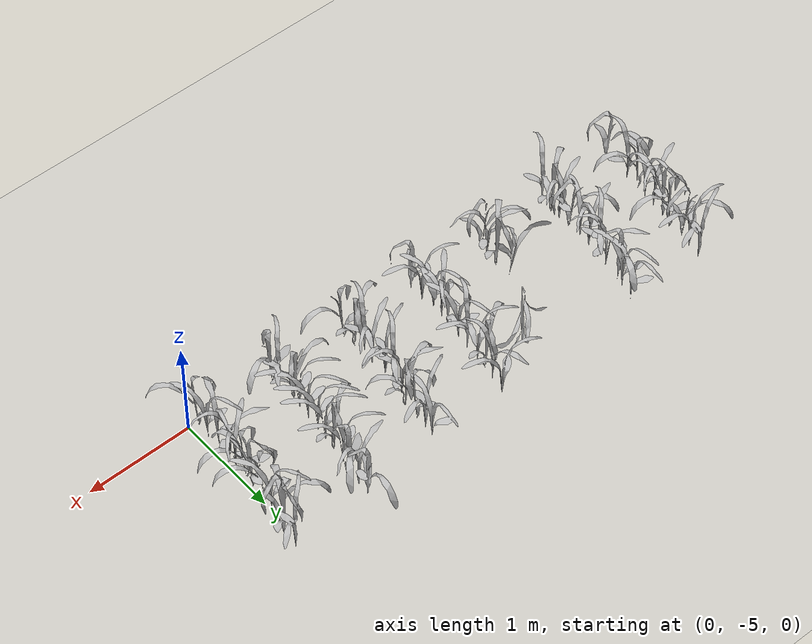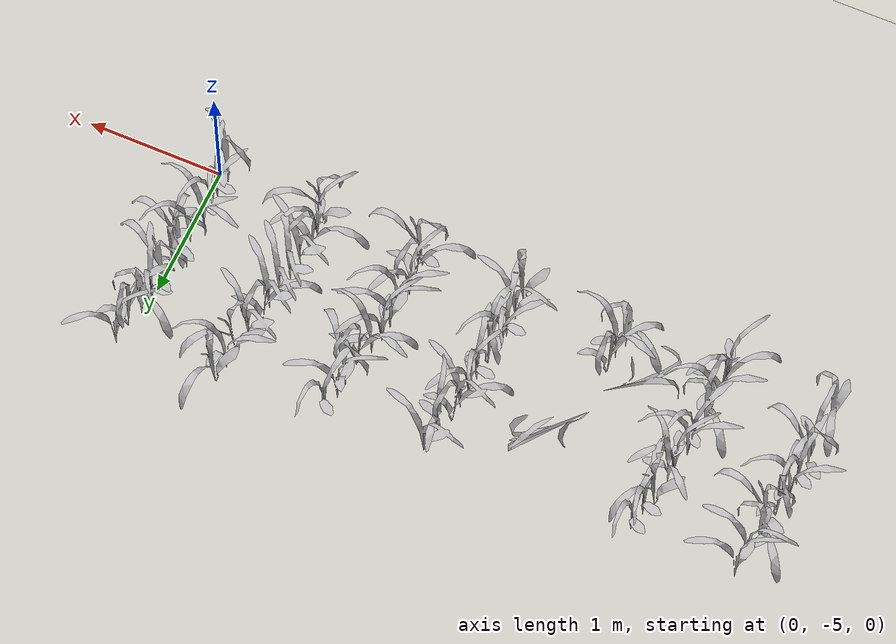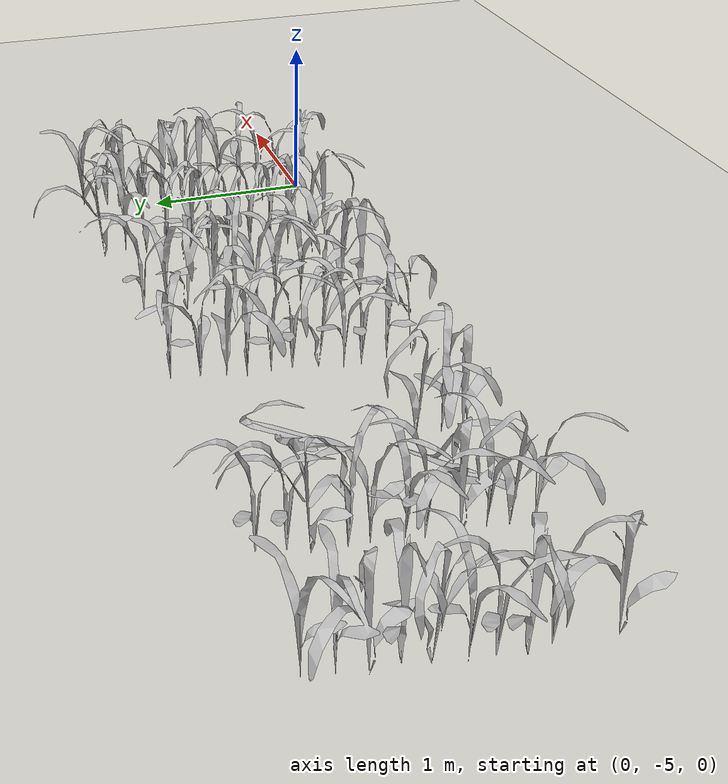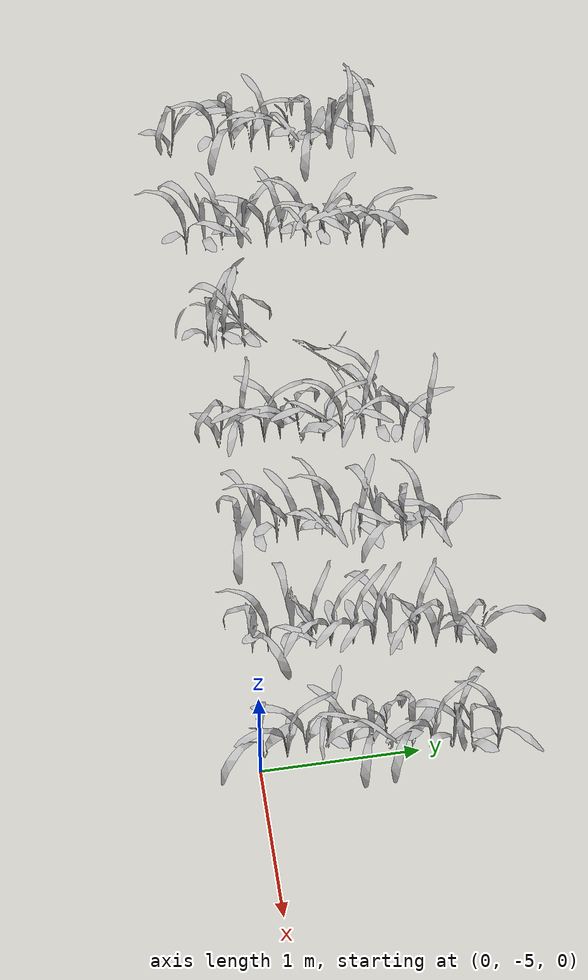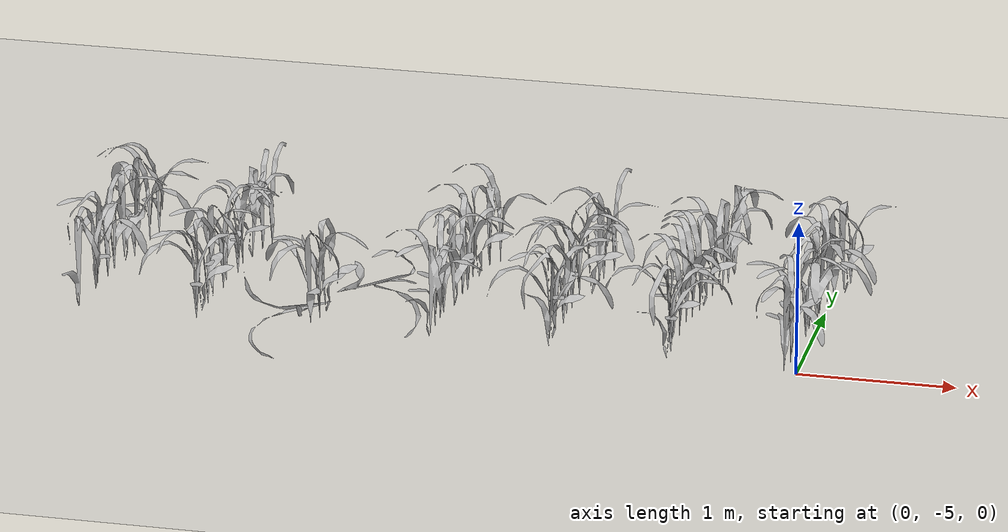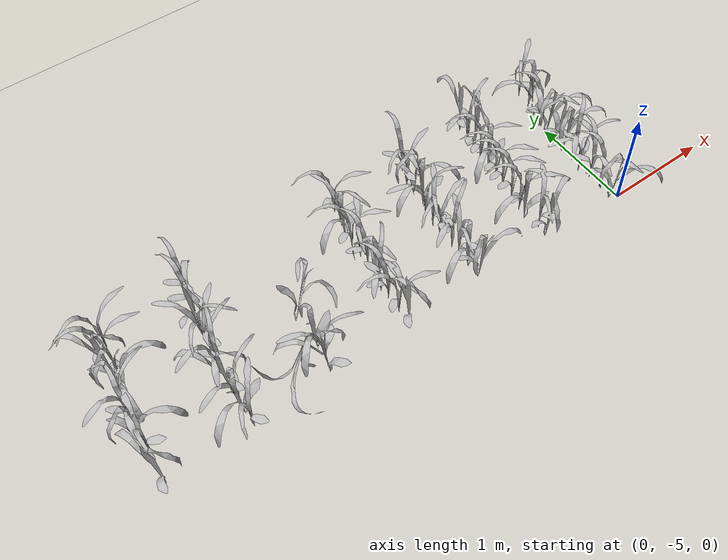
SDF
<sdf version="1.7">
 <world name="default">
  <model name="maize_01_0000">
   <pose>-4.60021 -4.94897 1e-06 3e-06 0.000156 2.6317</pose>
   <link name="maize_01_link">
    <inertial>
     <pose>0 0 0.01 0 -0 0</pose>
     <mass>0.3</mass>
     <inertia>
      <ixx>0.00334167</ixx>
      <ixy>0</ixy>
      <ixz>0</ixz>
      <iyy>0.00334167</iyy>
      <iyz>0</iyz>
      <izz>1.66667e-05</izz>
     </inertia>
     <pose>0 0 0.1 0 -0 0</pose>
    </inertial>
    <visual name="visual">
     <geometry>
      <mesh><uri>model://maize_01/meshes/maize_01.dae</uri><scale>0.683166 0.683166 0.683166</scale></mesh>
     </geometry>
    </visual>
   </link>
   <static>0</static>
  </model>
  <model name="maize_02_0001">
   <pose>-4.57675 -4.65483 -0 2.8e-05 5e-06 -2.64534</pose>
   <link name="maize_02_link">
    <inertial>
     <pose>0 0 0.01 0 -0 0</pose>
     <mass>0.3</mass>
     <inertia>
      <ixx>0.00334167</ixx>
      <ixy>0</ixy>
      <ixz>0</ixz>
      <iyy>0.00334167</iyy>
      <iyz>0</iyz>
      <izz>1.66667e-05</izz>
     </inertia>
     <pose>0 0 0.1 0 -0 0</pose>
    </inertial>
    <visual name="visual">
     <geometry>
      <mesh><uri>model://maize_02/meshes/maize_02.dae</uri><scale>0.683166 0.683166 0.683166</scale></mesh>
     </geometry>
    </visual>
   </link>
   <static>0</static>
  </model>
  <model name="maize_01_0002">
   <pose>-4.60094 -4.53894 -0 5e-06 2.8e-05 0.324141</pose>
   <link name="maize_01_link">
    <inertial>
     <pose>0 0 0.01 0 -0 0</pose>
     <mass>0.3</mass>
     <inertia>
      <ixx>0.00334167</ixx>
      <ixy>0</ixy>
      <ixz>0</ixz>
      <iyy>0.00334167</iyy>
      <iyz>0</iyz>
      <izz>1.66667e-05</izz>
     </inertia>
     <pose>0 0 0.1 0 -0 0</pose>
    </inertial>
    <visual name="visual">
     <geometry>
      <mesh><uri>model://maize_01/meshes/maize_01.dae</uri><scale>0.683166 0.683166 0.683166</scale></mesh>
     </geometry>
    </visual>
   </link>
   <static>0</static>
  </model>
  <model name="maize_02_0003">
   <pose>-4.56877 -4.41225 -0 -5e-06 -2.8e-05 0.481009</pose>
   <link name="maize_02_link">
    <inertial>
     <pose>0 0 0.01 0 -0 0</pose>
     <mass>0.3</mass>
     <inertia>
      <ixx>0.00334167</ixx>
      <ixy>0</ixy>
      <ixz>0</ixz>
      <iyy>0.00334167</iyy>
      <iyz>0</iyz>
      <izz>1.66667e-05</izz>
     </inertia>
     <pose>0 0 0.1 0 -0 0</pose>
    </inertial>
    <visual name="visual">
     <geometry>
      <mesh><uri>model://maize_02/meshes/maize_02.dae</uri><scale>0.683166 0.683166 0.683166</scale></mesh>
     </geometry>
    </visual>
   </link>
   <static>0</static>
  </model>
  <model name="maize_02_0004">
   <pose>-4.55891 -4.29432 1e-06 0.000156 3e-06 -0.575998</pose>
   <link name="maize_02_link">
    <inertial>
     <pose>0 0 0.01 0 -0 0</pose>
     <mass>0.3</mass>
     <inertia>
      <ixx>0.00334167</ixx>
      <ixy>0</ixy>
      <ixz>0</ixz>
      <iyy>0.00334167</iyy>
      <iyz>0</iyz>
      <izz>1.66667e-05</izz>
     </inertia>
     <pose>0 0 0.1 0 -0 0</pose>
    </inertial>
    <visual name="visual">
     <geometry>
      <mesh><uri>model://maize_02/meshes/maize_02.dae</uri><scale>0.683166 0.683166 0.683166</scale></mesh>
     </geometry>
    </visual>
   </link>
   <static>0</static>
  </model>
  <model name="maize_01_0005">
   <pose>-4.53132 -4.14815 -0 -5e-06 2.8e-05 -0.755377</pose>
   <link name="maize_01_link">
    <inertial>
     <pose>0 0 0.01 0 -0 0</pose>
     <mass>0.3</mass>
     <inertia>
      <ixx>0.00334167</ixx>
      <ixy>0</ixy>
      <ixz>0</ixz>
      <iyy>0.00334167</iyy>
      <iyz>0</iyz>
      <izz>1.66667e-05</izz>
     </inertia>
     <pose>0 0 0.1 0 -0 0</pose>
    </inertial>
    <visual name="visual">
     <geometry>
      <mesh><uri>model://maize_01/meshes/maize_01.dae</uri><scale>0.683166 0.683166 0.683166</scale></mesh>
     </geometry>
    </visual>
   </link>
   <static>0</static>
  </model>
  <model name="maize_01_0006">
   <pose>-4.49697 -4.03278 -0.000245 1.2e-05 -1.4e-05 0.581643</pose>
   <link name="maize_01_link">
    <inertial>
     <pose>0 0 0.01 0 -0 0</pose>
     <mass>0.3</mass>
     <inertia>
      <ixx>0.00334167</ixx>
      <ixy>0</ixy>
      <ixz>0</ixz>
      <iyy>0.00334167</iyy>
      <iyz>0</iyz>
      <izz>1.66667e-05</izz>
     </inertia>
     <pose>0 0 0.1 0 -0 0</pose>
    </inertial>
    <visual name="visual">
     <geometry>
      <mesh><uri>model://maize_01/meshes/maize_01.dae</uri><scale>0.683166 0.683166 0.683166</scale></mesh>
     </geometry>
    </visual>
   </link>
   <static>0</static>
  </model>
  <model name="maize_01_0007">
   <pose>-4.50994 -3.88738 -0 5e-06 2.8e-05 3.00576</pose>
   <link name="maize_01_link">
    <inertial>
     <pose>0 0 0.01 0 -0 0</pose>
     <mass>0.3</mass>
     <inertia>
      <ixx>0.00334167</ixx>
      <ixy>0</ixy>
      <ixz>0</ixz>
      <iyy>0.00334167</iyy>
      <iyz>0</iyz>
      <izz>1.66667e-05</izz>
     </inertia>
     <pose>0 0 0.1 0 -0 0</pose>
    </inertial>
    <visual name="visual">
     <geometry>
      <mesh><uri>model://maize_01/meshes/maize_01.dae</uri><scale>0.683166 0.683166 0.683166</scale></mesh>
     </geometry>
    </visual>
   </link>
   <static>0</static>
  </model>
  <model name="maize_02_0008">
   <pose>-4.47133 -3.76023 -0.000245 1.2e-05 -1.4e-05 2.06232</pose>
   <link name="maize_02_link">
    <inertial>
     <pose>0 0 0.01 0 -0 0</pose>
     <mass>0.3</mass>
     <inertia>
      <ixx>0.00334167</ixx>
      <ixy>0</ixy>
      <ixz>0</ixz>
      <iyy>0.00334167</iyy>
      <iyz>0</iyz>
      <izz>1.66667e-05</izz>
     </inertia>
     <pose>0 0 0.1 0 -0 0</pose>
    </inertial>
    <visual name="visual">
     <geometry>
      <mesh><uri>model://maize_02/meshes/maize_02.dae</uri><scale>0.683166 0.683166 0.683166</scale></mesh>
     </geometry>
    </visual>
   </link>
   <static>0</static>
  </model>
  <model name="maize_02_0009">
   <pose>-4.44709 -3.6212 -1e-06 -6e-06 8.6e-05 2.49509</pose>
   <link name="maize_02_link">
    <inertial>
     <pose>0 0 0.01 0 -0 0</pose>
     <mass>0.3</mass>
     <inertia>
      <ixx>0.00334167</ixx>
      <ixy>0</ixy>
      <ixz>0</ixz>
      <iyy>0.00334167</iyy>
      <iyz>0</iyz>
      <izz>1.66667e-05</izz>
     </inertia>
     <pose>0 0 0.1 0 -0 0</pose>
    </inertial>
    <visual name="visual">
     <geometry>
      <mesh><uri>model://maize_02/meshes/maize_02.dae</uri><scale>0.683166 0.683166 0.683166</scale></mesh>
     </geometry>
    </visual>
   </link>
   <static>0</static>
  </model>
  <model name="maize_02_0065">
   <pose>-3.83726 -4.94838 -0 -5e-06 2.8e-05 -3.10134</pose>
   <link name="maize_02_link">
    <inertial>
     <pose>0 0 0.01 0 -0 0</pose>
     <mass>0.3</mass>
     <inertia>
      <ixx>0.00334167</ixx>
      <ixy>0</ixy>
      <ixz>0</ixz>
      <iyy>0.00334167</iyy>
      <iyz>0</iyz>
      <izz>1.66667e-05</izz>
     </inertia>
     <pose>0 0 0.1 0 -0 0</pose>
    </inertial>
    <visual name="visual">
     <geometry>
      <mesh><uri>model://maize_02/meshes/maize_02.dae</uri><scale>0.683166 0.683166 0.683166</scale></mesh>
     </geometry>
    </visual>
   </link>
   <static>0</static>
  </model>
  <model name="maize_01_0066">
   <pose>-3.83989 -4.81857 1e-06 -3e-06 -0.000156 -1.69358</pose>
   <link name="maize_01_link">
    <inertial>
     <pose>0 0 0.01 0 -0 0</pose>
     <mass>0.3</mass>
     <inertia>
      <ixx>0.00334167</ixx>
      <ixy>0</ixy>
      <ixz>0</ixz>
      <iyy>0.00334167</iyy>
      <iyz>0</iyz>
      <izz>1.66667e-05</izz>
     </inertia>
     <pose>0 0 0.1 0 -0 0</pose>
    </inertial>
    <visual name="visual">
     <geometry>
      <mesh><uri>model://maize_01/meshes/maize_01.dae</uri><scale>0.683166 0.683166 0.683166</scale></mesh>
     </geometry>
    </visual>
   </link>
   <static>0</static>
  </model>
  <model name="maize_02_0067">
   <pose>-3.82858 -4.70818 -0 5e-06 -2.8e-05 -0.593022</pose>
   <link name="maize_02_link">
    <inertial>
     <pose>0 0 0.01 0 -0 0</pose>
     <mass>0.3</mass>
     <inertia>
      <ixx>0.00334167</ixx>
      <ixy>0</ixy>
      <ixz>0</ixz>
      <iyy>0.00334167</iyy>
      <iyz>0</iyz>
      <izz>1.66667e-05</izz>
     </inertia>
     <pose>0 0 0.1 0 -0 0</pose>
    </inertial>
    <visual name="visual">
     <geometry>
      <mesh><uri>model://maize_02/meshes/maize_02.dae</uri><scale>0.683166 0.683166 0.683166</scale></mesh>
     </geometry>
    </visual>
   </link>
   <static>0</static>
  </model>
  <model name="maize_01_0068">
   <pose>-3.82711 -4.58084 -0 -2.8e-05 -5e-06 3.01801</pose>
   <link name="maize_01_link">
    <inertial>
     <pose>0 0 0.01 0 -0 0</pose>
     <mass>0.3</mass>
     <inertia>
      <ixx>0.00334167</ixx>
      <ixy>0</ixy>
      <ixz>0</ixz>
      <iyy>0.00334167</iyy>
      <iyz>0</iyz>
      <izz>1.66667e-05</izz>
     </inertia>
     <pose>0 0 0.1 0 -0 0</pose>
    </inertial>
    <visual name="visual">
     <geometry>
      <mesh><uri>model://maize_01/meshes/maize_01.dae</uri><scale>0.683166 0.683166 0.683166</scale></mesh>
     </geometry>
    </visual>
   </link>
   <static>0</static>
  </model>
  <model name="maize_02_0069">
   <pose>-3.80594 -4.41671 1e-06 -0.000156 3e-06 0.200611</pose>
   <link name="maize_02_link">
    <inertial>
     <pose>0 0 0.01 0 -0 0</pose>
     <mass>0.3</mass>
     <inertia>
      <ixx>0.00334167</ixx>
      <ixy>0</ixy>
      <ixz>0</ixz>
      <iyy>0.00334167</iyy>
      <iyz>0</iyz>
      <izz>1.66667e-05</izz>
     </inertia>
     <pose>0 0 0.1 0 -0 0</pose>
    </inertial>
    <visual name="visual">
     <geometry>
      <mesh><uri>model://maize_02/meshes/maize_02.dae</uri><scale>0.683166 0.683166 0.683166</scale></mesh>
     </geometry>
    </visual>
   </link>
   <static>0</static>
  </model>
  <model name="maize_02_0070">
   <pose>-3.81408 -4.31588 1e-06 0.000156 3e-06 -0.592649</pose>
   <link name="maize_02_link">
    <inertial>
     <pose>0 0 0.01 0 -0 0</pose>
     <mass>0.3</mass>
     <inertia>
      <ixx>0.00334167</ixx>
      <ixy>0</ixy>
      <ixz>0</ixz>
      <iyy>0.00334167</iyy>
      <iyz>0</iyz>
      <izz>1.66667e-05</izz>
     </inertia>
     <pose>0 0 0.1 0 -0 0</pose>
    </inertial>
    <visual name="visual">
     <geometry>
      <mesh><uri>model://maize_02/meshes/maize_02.dae</uri><scale>0.683166 0.683166 0.683166</scale></mesh>
     </geometry>
    </visual>
   </link>
   <static>0</static>
  </model>
  <model name="maize_02_0071">
   <pose>-3.77636 -4.16197 -0 5e-06 -2.8e-05 3.03421</pose>
   <link name="maize_02_link">
    <inertial>
     <pose>0 0 0.01 0 -0 0</pose>
     <mass>0.3</mass>
     <inertia>
      <ixx>0.00334167</ixx>
      <ixy>0</ixy>
      <ixz>0</ixz>
      <iyy>0.00334167</iyy>
      <iyz>0</iyz>
      <izz>1.66667e-05</izz>
     </inertia>
     <pose>0 0 0.1 0 -0 0</pose>
    </inertial>
    <visual name="visual">
     <geometry>
      <mesh><uri>model://maize_02/meshes/maize_02.dae</uri><scale>0.683166 0.683166 0.683166</scale></mesh>
     </geometry>
    </visual>
   </link>
   <static>0</static>
  </model>
  <model name="maize_02_0072">
   <pose>-3.77167 -4.0588 -1e-06 6e-06 -8.3e-05 -1.79891</pose>
   <link name="maize_02_link">
    <inertial>
     <pose>0 0 0.01 0 -0 0</pose>
     <mass>0.3</mass>
     <inertia>
      <ixx>0.00334167</ixx>
      <ixy>0</ixy>
      <ixz>0</ixz>
      <iyy>0.00334167</iyy>
      <iyz>0</iyz>
      <izz>1.66667e-05</izz>
     </inertia>
     <pose>0 0 0.1 0 -0 0</pose>
    </inertial>
    <visual name="visual">
     <geometry>
      <mesh><uri>model://maize_02/meshes/maize_02.dae</uri><scale>0.683166 0.683166 0.683166</scale></mesh>
     </geometry>
    </visual>
   </link>
   <static>0</static>
  </model>
  <model name="maize_01_0073">
   <pose>-3.75105 -3.89092 -0 2.8e-05 -5e-06 1.92099</pose>
   <link name="maize_01_link">
    <inertial>
     <pose>0 0 0.01 0 -0 0</pose>
     <mass>0.3</mass>
     <inertia>
      <ixx>0.00334167</ixx>
      <ixy>0</ixy>
      <ixz>0</ixz>
      <iyy>0.00334167</iyy>
      <iyz>0</iyz>
      <izz>1.66667e-05</izz>
     </inertia>
     <pose>0 0 0.1 0 -0 0</pose>
    </inertial>
    <visual name="visual">
     <geometry>
      <mesh><uri>model://maize_01/meshes/maize_01.dae</uri><scale>0.683166 0.683166 0.683166</scale></mesh>
     </geometry>
    </visual>
   </link>
   <static>0</static>
  </model>
  <model name="maize_02_0074">
   <pose>-3.71124 -3.79204 -0 6e-06 4.8e-05 0.703993</pose>
   <link name="maize_02_link">
    <inertial>
     <pose>0 0 0.01 0 -0 0</pose>
     <mass>0.3</mass>
     <inertia>
      <ixx>0.00334167</ixx>
      <ixy>0</ixy>
      <ixz>0</ixz>
      <iyy>0.00334167</iyy>
      <iyz>0</iyz>
      <izz>1.66667e-05</izz>
     </inertia>
     <pose>0 0 0.1 0 -0 0</pose>
    </inertial>
    <visual name="visual">
     <geometry>
      <mesh><uri>model://maize_02/meshes/maize_02.dae</uri><scale>0.683166 0.683166 0.683166</scale></mesh>
     </geometry>
    </visual>
   </link>
   <static>0</static>
  </model>
  <model name="maize_02_0075">
   <pose>-3.68409 -3.65346 -1e-06 -8.9e-05 -6e-06 0.506094</pose>
   <link name="maize_02_link">
    <inertial>
     <pose>0 0 0.01 0 -0 0</pose>
     <mass>0.3</mass>
     <inertia>
      <ixx>0.00334167</ixx>
      <ixy>0</ixy>
      <ixz>0</ixz>
      <iyy>0.00334167</iyy>
      <iyz>0</iyz>
      <izz>1.66667e-05</izz>
     </inertia>
     <pose>0 0 0.1 0 -0 0</pose>
    </inertial>
    <visual name="visual">
     <geometry>
      <mesh><uri>model://maize_02/meshes/maize_02.dae</uri><scale>0.683166 0.683166 0.683166</scale></mesh>
     </geometry>
    </visual>
   </link>
   <static>0</static>
  </model>
  <model name="maize_01_0121">
   <pose>-3.10625 -4.90537 -0 5e-06 -2.8e-05 -2.97728</pose>
   <link name="maize_01_link">
    <inertial>
     <pose>0 0 0.01 0 -0 0</pose>
     <mass>0.3</mass>
     <inertia>
      <ixx>0.00334167</ixx>
      <ixy>0</ixy>
      <ixz>0</ixz>
      <iyy>0.00334167</iyy>
      <iyz>0</iyz>
      <izz>1.66667e-05</izz>
     </inertia>
     <pose>0 0 0.1 0 -0 0</pose>
    </inertial>
    <visual name="visual">
     <geometry>
      <mesh><uri>model://maize_01/meshes/maize_01.dae</uri><scale>0.683166 0.683166 0.683166</scale></mesh>
     </geometry>
    </visual>
   </link>
   <static>0</static>
  </model>
  <model name="maize_02_0122">
   <pose>-3.07703 -4.80382 -0 -5e-06 -2.8e-05 -1.31924</pose>
   <link name="maize_02_link">
    <inertial>
     <pose>0 0 0.01 0 -0 0</pose>
     <mass>0.3</mass>
     <inertia>
      <ixx>0.00334167</ixx>
      <ixy>0</ixy>
      <ixz>0</ixz>
      <iyy>0.00334167</iyy>
      <iyz>0</iyz>
      <izz>1.66667e-05</izz>
     </inertia>
     <pose>0 0 0.1 0 -0 0</pose>
    </inertial>
    <visual name="visual">
     <geometry>
      <mesh><uri>model://maize_02/meshes/maize_02.dae</uri><scale>0.683166 0.683166 0.683166</scale></mesh>
     </geometry>
    </visual>
   </link>
   <static>0</static>
  </model>
  <model name="maize_01_0123">
   <pose>-3.07015 -4.66917 1e-06 0.000156 -3e-06 -1.52106</pose>
   <link name="maize_01_link">
    <inertial>
     <pose>0 0 0.01 0 -0 0</pose>
     <mass>0.3</mass>
     <inertia>
      <ixx>0.00334167</ixx>
      <ixy>0</ixy>
      <ixz>0</ixz>
      <iyy>0.00334167</iyy>
      <iyz>0</iyz>
      <izz>1.66667e-05</izz>
     </inertia>
     <pose>0 0 0.1 0 -0 0</pose>
    </inertial>
    <visual name="visual">
     <geometry>
      <mesh><uri>model://maize_01/meshes/maize_01.dae</uri><scale>0.683166 0.683166 0.683166</scale></mesh>
     </geometry>
    </visual>
   </link>
   <static>0</static>
  </model>
  <model name="maize_02_0124">
   <pose>-3.07247 -4.51114 0.009953 1.5708 1.56603 -0.872502</pose>
   <link name="maize_02_link">
    <inertial>
     <pose>0 0 0.01 0 -0 0</pose>
     <mass>0.3</mass>
     <inertia>
      <ixx>0.00334167</ixx>
      <ixy>0</ixy>
      <ixz>0</ixz>
      <iyy>0.00334167</iyy>
      <iyz>0</iyz>
      <izz>1.66667e-05</izz>
     </inertia>
     <pose>0 0 0.1 0 -0 0</pose>
    </inertial>
    <visual name="visual">
     <geometry>
      <mesh><uri>model://maize_02/meshes/maize_02.dae</uri><scale>0.683166 0.683166 0.683166</scale></mesh>
     </geometry>
    </visual>
   </link>
   <static>0</static>
  </model>
  <model name="maize_01_0125">
   <pose>-3.07966 -4.35658 0.009953 -1.5708 1.56603 -0.663974</pose>
   <link name="maize_01_link">
    <inertial>
     <pose>0 0 0.01 0 -0 0</pose>
     <mass>0.3</mass>
     <inertia>
      <ixx>0.00334167</ixx>
      <ixy>0</ixy>
      <ixz>0</ixz>
      <iyy>0.00334167</iyy>
      <iyz>0</iyz>
      <izz>1.66667e-05</izz>
     </inertia>
     <pose>0 0 0.1 0 -0 0</pose>
    </inertial>
    <visual name="visual">
     <geometry>
      <mesh><uri>model://maize_01/meshes/maize_01.dae</uri><scale>0.683166 0.683166 0.683166</scale></mesh>
     </geometry>
    </visual>
   </link>
   <static>0</static>
  </model>
  <model name="maize_01_0174">
   <pose>-2.33216 -4.93794 -1e-06 8.6e-05 6e-06 2.16298</pose>
   <link name="maize_01_link">
    <inertial>
     <pose>0 0 0.01 0 -0 0</pose>
     <mass>0.3</mass>
     <inertia>
      <ixx>0.00334167</ixx>
      <ixy>0</ixy>
      <ixz>0</ixz>
      <iyy>0.00334167</iyy>
      <iyz>0</iyz>
      <izz>1.66667e-05</izz>
     </inertia>
     <pose>0 0 0.1 0 -0 0</pose>
    </inertial>
    <visual name="visual">
     <geometry>
      <mesh><uri>model://maize_01/meshes/maize_01.dae</uri><scale>0.683166 0.683166 0.683166</scale></mesh>
     </geometry>
    </visual>
   </link>
   <static>0</static>
  </model>
  <model name="maize_02_0175">
   <pose>-2.33553 -4.79201 -0 -2.8e-05 5e-06 1.84083</pose>
   <link name="maize_02_link">
    <inertial>
     <pose>0 0 0.01 0 -0 0</pose>
     <mass>0.3</mass>
     <inertia>
      <ixx>0.00334167</ixx>
      <ixy>0</ixy>
      <ixz>0</ixz>
      <iyy>0.00334167</iyy>
      <iyz>0</iyz>
      <izz>1.66667e-05</izz>
     </inertia>
     <pose>0 0 0.1 0 -0 0</pose>
    </inertial>
    <visual name="visual">
     <geometry>
      <mesh><uri>model://maize_02/meshes/maize_02.dae</uri><scale>0.683166 0.683166 0.683166</scale></mesh>
     </geometry>
    </visual>
   </link>
   <static>0</static>
  </model>
  <model name="maize_02_0176">
   <pose>-2.33704 -4.64424 1e-06 -3e-06 0.000156 0.820507</pose>
   <link name="maize_02_link">
    <inertial>
     <pose>0 0 0.01 0 -0 0</pose>
     <mass>0.3</mass>
     <inertia>
      <ixx>0.00334167</ixx>
      <ixy>0</ixy>
      <ixz>0</ixz>
      <iyy>0.00334167</iyy>
      <iyz>0</iyz>
      <izz>1.66667e-05</izz>
     </inertia>
     <pose>0 0 0.1 0 -0 0</pose>
    </inertial>
    <visual name="visual">
     <geometry>
      <mesh><uri>model://maize_02/meshes/maize_02.dae</uri><scale>0.683166 0.683166 0.683166</scale></mesh>
     </geometry>
    </visual>
   </link>
   <static>0</static>
  </model>
  <model name="maize_02_0177">
   <pose>-2.34051 -4.54026 -0 -2.8e-05 5e-06 -0.132594</pose>
   <link name="maize_02_link">
    <inertial>
     <pose>0 0 0.01 0 -0 0</pose>
     <mass>0.3</mass>
     <inertia>
      <ixx>0.00334167</ixx>
      <ixy>0</ixy>
      <ixz>0</ixz>
      <iyy>0.00334167</iyy>
      <iyz>0</iyz>
      <izz>1.66667e-05</izz>
     </inertia>
     <pose>0 0 0.1 0 -0 0</pose>
    </inertial>
    <visual name="visual">
     <geometry>
      <mesh><uri>model://maize_02/meshes/maize_02.dae</uri><scale>0.683166 0.683166 0.683166</scale></mesh>
     </geometry>
    </visual>
   </link>
   <static>0</static>
  </model>
  <model name="maize_01_0178">
   <pose>-2.30319 -4.40953 1e-06 0.000156 3e-06 -0.759122</pose>
   <link name="maize_01_link">
    <inertial>
     <pose>0 0 0.01 0 -0 0</pose>
     <mass>0.3</mass>
     <inertia>
      <ixx>0.00334167</ixx>
      <ixy>0</ixy>
      <ixz>0</ixz>
      <iyy>0.00334167</iyy>
      <iyz>0</iyz>
      <izz>1.66667e-05</izz>
     </inertia>
     <pose>0 0 0.1 0 -0 0</pose>
    </inertial>
    <visual name="visual">
     <geometry>
      <mesh><uri>model://maize_01/meshes/maize_01.dae</uri><scale>0.683166 0.683166 0.683166</scale></mesh>
     </geometry>
    </visual>
   </link>
   <static>0</static>
  </model>
  <model name="maize_02_0179">
   <pose>-2.28282 -4.26406 -0 6e-06 -4.8e-05 0.787591</pose>
   <link name="maize_02_link">
    <inertial>
     <pose>0 0 0.01 0 -0 0</pose>
     <mass>0.3</mass>
     <inertia>
      <ixx>0.00334167</ixx>
      <ixy>0</ixy>
      <ixz>0</ixz>
      <iyy>0.00334167</iyy>
      <iyz>0</iyz>
      <izz>1.66667e-05</izz>
     </inertia>
     <pose>0 0 0.1 0 -0 0</pose>
    </inertial>
    <visual name="visual">
     <geometry>
      <mesh><uri>model://maize_02/meshes/maize_02.dae</uri><scale>0.683166 0.683166 0.683166</scale></mesh>
     </geometry>
    </visual>
   </link>
   <static>0</static>
  </model>
  <model name="maize_02_0180">
   <pose>-2.2749 -4.14452 -1e-06 -7.9e-05 6e-06 -3.05632</pose>
   <link name="maize_02_link">
    <inertial>
     <pose>0 0 0.01 0 -0 0</pose>
     <mass>0.3</mass>
     <inertia>
      <ixx>0.00334167</ixx>
      <ixy>0</ixy>
      <ixz>0</ixz>
      <iyy>0.00334167</iyy>
      <iyz>0</iyz>
      <izz>1.66667e-05</izz>
     </inertia>
     <pose>0 0 0.1 0 -0 0</pose>
    </inertial>
    <visual name="visual">
     <geometry>
      <mesh><uri>model://maize_02/meshes/maize_02.dae</uri><scale>0.683166 0.683166 0.683166</scale></mesh>
     </geometry>
    </visual>
   </link>
   <static>0</static>
  </model>
  <model name="maize_02_0181">
   <pose>-2.27345 -4.01101 -1e-06 -6e-06 8.9e-05 1.6669</pose>
   <link name="maize_02_link">
    <inertial>
     <pose>0 0 0.01 0 -0 0</pose>
     <mass>0.3</mass>
     <inertia>
      <ixx>0.00334167</ixx>
      <ixy>0</ixy>
      <ixz>0</ixz>
      <iyy>0.00334167</iyy>
      <iyz>0</iyz>
      <izz>1.66667e-05</izz>
     </inertia>
     <pose>0 0 0.1 0 -0 0</pose>
    </inertial>
    <visual name="visual">
     <geometry>
      <mesh><uri>model://maize_02/meshes/maize_02.dae</uri><scale>0.683166 0.683166 0.683166</scale></mesh>
     </geometry>
    </visual>
   </link>
   <static>0</static>
  </model>
  <model name="maize_01_0182">
   <pose>-2.26328 -3.897 -0.000245 1.4e-05 -1.2e-05 -1.81864</pose>
   <link name="maize_01_link">
    <inertial>
     <pose>0 0 0.01 0 -0 0</pose>
     <mass>0.3</mass>
     <inertia>
      <ixx>0.00334167</ixx>
      <ixy>0</ixy>
      <ixz>0</ixz>
      <iyy>0.00334167</iyy>
      <iyz>0</iyz>
      <izz>1.66667e-05</izz>
     </inertia>
     <pose>0 0 0.1 0 -0 0</pose>
    </inertial>
    <visual name="visual">
     <geometry>
      <mesh><uri>model://maize_01/meshes/maize_01.dae</uri><scale>0.683166 0.683166 0.683166</scale></mesh>
     </geometry>
    </visual>
   </link>
   <static>0</static>
  </model>
  <model name="maize_02_0183">
   <pose>-2.21874 -3.76271 -1e-06 -8.6e-05 -6e-06 -2.3134</pose>
   <link name="maize_02_link">
    <inertial>
     <pose>0 0 0.01 0 -0 0</pose>
     <mass>0.3</mass>
     <inertia>
      <ixx>0.00334167</ixx>
      <ixy>0</ixy>
      <ixz>0</ixz>
      <iyy>0.00334167</iyy>
      <iyz>0</iyz>
      <izz>1.66667e-05</izz>
     </inertia>
     <pose>0 0 0.1 0 -0 0</pose>
    </inertial>
    <visual name="visual">
     <geometry>
      <mesh><uri>model://maize_02/meshes/maize_02.dae</uri><scale>0.683166 0.683166 0.683166</scale></mesh>
     </geometry>
    </visual>
   </link>
   <static>0</static>
  </model>
  <model name="maize_02_0184">
   <pose>-2.18506 -3.60588 -0 -5e-06 -2.8e-05 1.80505</pose>
   <link name="maize_02_link">
    <inertial>
     <pose>0 0 0.01 0 -0 0</pose>
     <mass>0.3</mass>
     <inertia>
      <ixx>0.00334167</ixx>
      <ixy>0</ixy>
      <ixz>0</ixz>
      <iyy>0.00334167</iyy>
      <iyz>0</iyz>
      <izz>1.66667e-05</izz>
     </inertia>
     <pose>0 0 0.1 0 -0 0</pose>
    </inertial>
    <visual name="visual">
     <geometry>
      <mesh><uri>model://maize_02/meshes/maize_02.dae</uri><scale>0.683166 0.683166 0.683166</scale></mesh>
     </geometry>
    </visual>
   </link>
   <static>0</static>
  </model>
  <model name="maize_01_0249">
   <pose>-1.58007 -4.91705 -0 5e-06 -2.8e-05 0.665746</pose>
   <link name="maize_01_link">
    <inertial>
     <pose>0 0 0.01 0 -0 0</pose>
     <mass>0.3</mass>
     <inertia>
      <ixx>0.00334167</ixx>
      <ixy>0</ixy>
      <ixz>0</ixz>
      <iyy>0.00334167</iyy>
      <iyz>0</iyz>
      <izz>1.66667e-05</izz>
     </inertia>
     <pose>0 0 0.1 0 -0 0</pose>
    </inertial>
    <visual name="visual">
     <geometry>
      <mesh><uri>model://maize_01/meshes/maize_01.dae</uri><scale>0.683166 0.683166 0.683166</scale></mesh>
     </geometry>
    </visual>
   </link>
   <static>0</static>
  </model>
  <model name="maize_01_0250">
   <pose>-1.58901 -4.7784 -1e-06 -8.9e-05 6e-06 -1.90324</pose>
   <link name="maize_01_link">
    <inertial>
     <pose>0 0 0.01 0 -0 0</pose>
     <mass>0.3</mass>
     <inertia>
      <ixx>0.00334167</ixx>
      <ixy>0</ixy>
      <ixz>0</ixz>
      <iyy>0.00334167</iyy>
      <iyz>0</iyz>
      <izz>1.66667e-05</izz>
     </inertia>
     <pose>0 0 0.1 0 -0 0</pose>
    </inertial>
    <visual name="visual">
     <geometry>
      <mesh><uri>model://maize_01/meshes/maize_01.dae</uri><scale>0.683166 0.683166 0.683166</scale></mesh>
     </geometry>
    </visual>
   </link>
   <static>0</static>
  </model>
  <model name="maize_02_0251">
   <pose>-1.59561 -4.66736 -0 4.8e-05 6e-06 -3.00717</pose>
   <link name="maize_02_link">
    <inertial>
     <pose>0 0 0.01 0 -0 0</pose>
     <mass>0.3</mass>
     <inertia>
      <ixx>0.00334167</ixx>
      <ixy>0</ixy>
      <ixz>0</ixz>
      <iyy>0.00334167</iyy>
      <iyz>0</iyz>
      <izz>1.66667e-05</izz>
     </inertia>
     <pose>0 0 0.1 0 -0 0</pose>
    </inertial>
    <visual name="visual">
     <geometry>
      <mesh><uri>model://maize_02/meshes/maize_02.dae</uri><scale>0.683166 0.683166 0.683166</scale></mesh>
     </geometry>
    </visual>
   </link>
   <static>0</static>
  </model>
  <model name="maize_02_0252">
   <pose>-1.57042 -4.53499 1e-06 -3e-06 -0.000156 -0.447969</pose>
   <link name="maize_02_link">
    <inertial>
     <pose>0 0 0.01 0 -0 0</pose>
     <mass>0.3</mass>
     <inertia>
      <ixx>0.00334167</ixx>
      <ixy>0</ixy>
      <ixz>0</ixz>
      <iyy>0.00334167</iyy>
      <iyz>0</iyz>
      <izz>1.66667e-05</izz>
     </inertia>
     <pose>0 0 0.1 0 -0 0</pose>
    </inertial>
    <visual name="visual">
     <geometry>
      <mesh><uri>model://maize_02/meshes/maize_02.dae</uri><scale>0.683166 0.683166 0.683166</scale></mesh>
     </geometry>
    </visual>
   </link>
   <static>0</static>
  </model>
  <model name="maize_02_0253">
   <pose>-1.58208 -4.38062 -0 2.8e-05 -5e-06 2.51202</pose>
   <link name="maize_02_link">
    <inertial>
     <pose>0 0 0.01 0 -0 0</pose>
     <mass>0.3</mass>
     <inertia>
      <ixx>0.00334167</ixx>
      <ixy>0</ixy>
      <ixz>0</ixz>
      <iyy>0.00334167</iyy>
      <iyz>0</iyz>
      <izz>1.66667e-05</izz>
     </inertia>
     <pose>0 0 0.1 0 -0 0</pose>
    </inertial>
    <visual name="visual">
     <geometry>
      <mesh><uri>model://maize_02/meshes/maize_02.dae</uri><scale>0.683166 0.683166 0.683166</scale></mesh>
     </geometry>
    </visual>
   </link>
   <static>0</static>
  </model>
  <model name="maize_02_0254">
   <pose>-1.57275 -4.26578 -0 2.8e-05 -5e-06 3.13893</pose>
   <link name="maize_02_link">
    <inertial>
     <pose>0 0 0.01 0 -0 0</pose>
     <mass>0.3</mass>
     <inertia>
      <ixx>0.00334167</ixx>
      <ixy>0</ixy>
      <ixz>0</ixz>
      <iyy>0.00334167</iyy>
      <iyz>0</iyz>
      <izz>1.66667e-05</izz>
     </inertia>
     <pose>0 0 0.1 0 -0 0</pose>
    </inertial>
    <visual name="visual">
     <geometry>
      <mesh><uri>model://maize_02/meshes/maize_02.dae</uri><scale>0.683166 0.683166 0.683166</scale></mesh>
     </geometry>
    </visual>
   </link>
   <static>0</static>
  </model>
  <model name="maize_02_0255">
   <pose>-1.55351 -4.13645 1e-06 3e-06 -0.000156 -1.33259</pose>
   <link name="maize_02_link">
    <inertial>
     <pose>0 0 0.01 0 -0 0</pose>
     <mass>0.3</mass>
     <inertia>
      <ixx>0.00334167</ixx>
      <ixy>0</ixy>
      <ixz>0</ixz>
      <iyy>0.00334167</iyy>
      <iyz>0</iyz>
      <izz>1.66667e-05</izz>
     </inertia>
     <pose>0 0 0.1 0 -0 0</pose>
    </inertial>
    <visual name="visual">
     <geometry>
      <mesh><uri>model://maize_02/meshes/maize_02.dae</uri><scale>0.683166 0.683166 0.683166</scale></mesh>
     </geometry>
    </visual>
   </link>
   <static>0</static>
  </model>
  <model name="maize_01_0256">
   <pose>-1.49806 -4.02213 1e-06 0.000156 -3e-06 -2.0026</pose>
   <link name="maize_01_link">
    <inertial>
     <pose>0 0 0.01 0 -0 0</pose>
     <mass>0.3</mass>
     <inertia>
      <ixx>0.00334167</ixx>
      <ixy>0</ixy>
      <ixz>0</ixz>
      <iyy>0.00334167</iyy>
      <iyz>0</iyz>
      <izz>1.66667e-05</izz>
     </inertia>
     <pose>0 0 0.1 0 -0 0</pose>
    </inertial>
    <visual name="visual">
     <geometry>
      <mesh><uri>model://maize_01/meshes/maize_01.dae</uri><scale>0.683166 0.683166 0.683166</scale></mesh>
     </geometry>
    </visual>
   </link>
   <static>0</static>
  </model>
  <model name="maize_01_0257">
   <pose>-1.48611 -3.86631 -0.000245 -1.4e-05 -1.2e-05 -0.054735</pose>
   <link name="maize_01_link">
    <inertial>
     <pose>0 0 0.01 0 -0 0</pose>
     <mass>0.3</mass>
     <inertia>
      <ixx>0.00334167</ixx>
      <ixy>0</ixy>
      <ixz>0</ixz>
      <iyy>0.00334167</iyy>
      <iyz>0</iyz>
      <izz>1.66667e-05</izz>
     </inertia>
     <pose>0 0 0.1 0 -0 0</pose>
    </inertial>
    <visual name="visual">
     <geometry>
      <mesh><uri>model://maize_01/meshes/maize_01.dae</uri><scale>0.683166 0.683166 0.683166</scale></mesh>
     </geometry>
    </visual>
   </link>
   <static>0</static>
  </model>
  <model name="maize_02_0258">
   <pose>-1.47778 -3.74815 -0 2.8e-05 -5e-06 2.55254</pose>
   <link name="maize_02_link">
    <inertial>
     <pose>0 0 0.01 0 -0 0</pose>
     <mass>0.3</mass>
     <inertia>
      <ixx>0.00334167</ixx>
      <ixy>0</ixy>
      <ixz>0</ixz>
      <iyy>0.00334167</iyy>
      <iyz>0</iyz>
      <izz>1.66667e-05</izz>
     </inertia>
     <pose>0 0 0.1 0 -0 0</pose>
    </inertial>
    <visual name="visual">
     <geometry>
      <mesh><uri>model://maize_02/meshes/maize_02.dae</uri><scale>0.683166 0.683166 0.683166</scale></mesh>
     </geometry>
    </visual>
   </link>
   <static>0</static>
  </model>
  <model name="maize_02_0259">
   <pose>-1.43831 -3.6152 -0 5e-06 -2.8e-05 0.41983</pose>
   <link name="maize_02_link">
    <inertial>
     <pose>0 0 0.01 0 -0 0</pose>
     <mass>0.3</mass>
     <inertia>
      <ixx>0.00334167</ixx>
      <ixy>0</ixy>
      <ixz>0</ixz>
      <iyy>0.00334167</iyy>
      <iyz>0</iyz>
      <izz>1.66667e-05</izz>
     </inertia>
     <pose>0 0 0.1 0 -0 0</pose>
    </inertial>
    <visual name="visual">
     <geometry>
      <mesh><uri>model://maize_02/meshes/maize_02.dae</uri><scale>0.683166 0.683166 0.683166</scale></mesh>
     </geometry>
    </visual>
   </link>
   <static>0</static>
  </model>
  <model name="maize_01_0323">
   <pose>-0.827431 -4.93766 1e-06 0.000156 3e-06 1.24392</pose>
   <link name="maize_01_link">
    <inertial>
     <pose>0 0 0.01 0 -0 0</pose>
     <mass>0.3</mass>
     <inertia>
      <ixx>0.00334167</ixx>
      <ixy>0</ixy>
      <ixz>0</ixz>
      <iyy>0.00334167</iyy>
      <iyz>0</iyz>
      <izz>1.66667e-05</izz>
     </inertia>
     <pose>0 0 0.1 0 -0 0</pose>
    </inertial>
    <visual name="visual">
     <geometry>
      <mesh><uri>model://maize_01/meshes/maize_01.dae</uri><scale>0.683166 0.683166 0.683166</scale></mesh>
     </geometry>
    </visual>
   </link>
   <static>0</static>
  </model>
  <model name="maize_02_0324">
   <pose>-0.821961 -4.83537 -1e-06 -8.3e-05 6e-06 3.10107</pose>
   <link name="maize_02_link">
    <inertial>
     <pose>0 0 0.01 0 -0 0</pose>
     <mass>0.3</mass>
     <inertia>
      <ixx>0.00334167</ixx>
      <ixy>0</ixy>
      <ixz>0</ixz>
      <iyy>0.00334167</iyy>
      <iyz>0</iyz>
      <izz>1.66667e-05</izz>
     </inertia>
     <pose>0 0 0.1 0 -0 0</pose>
    </inertial>
    <visual name="visual">
     <geometry>
      <mesh><uri>model://maize_02/meshes/maize_02.dae</uri><scale>0.683166 0.683166 0.683166</scale></mesh>
     </geometry>
    </visual>
   </link>
   <static>0</static>
  </model>
  <model name="maize_01_0325">
   <pose>-0.852781 -4.67518 1e-06 -3e-06 -0.000156 -2.22874</pose>
   <link name="maize_01_link">
    <inertial>
     <pose>0 0 0.01 0 -0 0</pose>
     <mass>0.3</mass>
     <inertia>
      <ixx>0.00334167</ixx>
      <ixy>0</ixy>
      <ixz>0</ixz>
      <iyy>0.00334167</iyy>
      <iyz>0</iyz>
      <izz>1.66667e-05</izz>
     </inertia>
     <pose>0 0 0.1 0 -0 0</pose>
    </inertial>
    <visual name="visual">
     <geometry>
      <mesh><uri>model://maize_01/meshes/maize_01.dae</uri><scale>0.683166 0.683166 0.683166</scale></mesh>
     </geometry>
    </visual>
   </link>
   <static>0</static>
  </model>
  <model name="maize_02_0326">
   <pose>-0.820856 -4.56813 -0 4.8e-05 -6e-06 1.57103</pose>
   <link name="maize_02_link">
    <inertial>
     <pose>0 0 0.01 0 -0 0</pose>
     <mass>0.3</mass>
     <inertia>
      <ixx>0.00334167</ixx>
      <ixy>0</ixy>
      <ixz>0</ixz>
      <iyy>0.00334167</iyy>
      <iyz>0</iyz>
      <izz>1.66667e-05</izz>
     </inertia>
     <pose>0 0 0.1 0 -0 0</pose>
    </inertial>
    <visual name="visual">
     <geometry>
      <mesh><uri>model://maize_02/meshes/maize_02.dae</uri><scale>0.683166 0.683166 0.683166</scale></mesh>
     </geometry>
    </visual>
   </link>
   <static>0</static>
  </model>
  <model name="maize_02_0327">
   <pose>-0.806692 -4.43867 -1e-06 7.9e-05 -6e-06 1.19401</pose>
   <link name="maize_02_link">
    <inertial>
     <pose>0 0 0.01 0 -0 0</pose>
     <mass>0.3</mass>
     <inertia>
      <ixx>0.00334167</ixx>
      <ixy>0</ixy>
      <ixz>0</ixz>
      <iyy>0.00334167</iyy>
      <iyz>0</iyz>
      <izz>1.66667e-05</izz>
     </inertia>
     <pose>0 0 0.1 0 -0 0</pose>
    </inertial>
    <visual name="visual">
     <geometry>
      <mesh><uri>model://maize_02/meshes/maize_02.dae</uri><scale>0.683166 0.683166 0.683166</scale></mesh>
     </geometry>
    </visual>
   </link>
   <static>0</static>
  </model>
  <model name="maize_02_0328">
   <pose>-0.794247 -4.29683 -1e-06 6e-06 7.9e-05 1.31256</pose>
   <link name="maize_02_link">
    <inertial>
     <pose>0 0 0.01 0 -0 0</pose>
     <mass>0.3</mass>
     <inertia>
      <ixx>0.00334167</ixx>
      <ixy>0</ixy>
      <ixz>0</ixz>
      <iyy>0.00334167</iyy>
      <iyz>0</iyz>
      <izz>1.66667e-05</izz>
     </inertia>
     <pose>0 0 0.1 0 -0 0</pose>
    </inertial>
    <visual name="visual">
     <geometry>
      <mesh><uri>model://maize_02/meshes/maize_02.dae</uri><scale>0.683166 0.683166 0.683166</scale></mesh>
     </geometry>
    </visual>
   </link>
   <static>0</static>
  </model>
  <model name="maize_02_0329">
   <pose>-0.771792 -4.17402 -1e-06 8.3e-05 -6e-06 1.42156</pose>
   <link name="maize_02_link">
    <inertial>
     <pose>0 0 0.01 0 -0 0</pose>
     <mass>0.3</mass>
     <inertia>
      <ixx>0.00334167</ixx>
      <ixy>0</ixy>
      <ixz>0</ixz>
      <iyy>0.00334167</iyy>
      <iyz>0</iyz>
      <izz>1.66667e-05</izz>
     </inertia>
     <pose>0 0 0.1 0 -0 0</pose>
    </inertial>
    <visual name="visual">
     <geometry>
      <mesh><uri>model://maize_02/meshes/maize_02.dae</uri><scale>0.683166 0.683166 0.683166</scale></mesh>
     </geometry>
    </visual>
   </link>
   <static>0</static>
  </model>
  <model name="maize_01_0330">
   <pose>-0.770331 -4.05984 -0 5e-06 -2.8e-05 -1.76818</pose>
   <link name="maize_01_link">
    <inertial>
     <pose>0 0 0.01 0 -0 0</pose>
     <mass>0.3</mass>
     <inertia>
      <ixx>0.00334167</ixx>
      <ixy>0</ixy>
      <ixz>0</ixz>
      <iyy>0.00334167</iyy>
      <iyz>0</iyz>
      <izz>1.66667e-05</izz>
     </inertia>
     <pose>0 0 0.1 0 -0 0</pose>
    </inertial>
    <visual name="visual">
     <geometry>
      <mesh><uri>model://maize_01/meshes/maize_01.dae</uri><scale>0.683166 0.683166 0.683166</scale></mesh>
     </geometry>
    </visual>
   </link>
   <static>0</static>
  </model>
  <model name="maize_02_0331">
   <pose>-0.740481 -3.91064 -0.000245 1.4e-05 -1.2e-05 1.56963</pose>
   <link name="maize_02_link">
    <inertial>
     <pose>0 0 0.01 0 -0 0</pose>
     <mass>0.3</mass>
     <inertia>
      <ixx>0.00334167</ixx>
      <ixy>0</ixy>
      <ixz>0</ixz>
      <iyy>0.00334167</iyy>
      <iyz>0</iyz>
      <izz>1.66667e-05</izz>
     </inertia>
     <pose>0 0 0.1 0 -0 0</pose>
    </inertial>
    <visual name="visual">
     <geometry>
      <mesh><uri>model://maize_02/meshes/maize_02.dae</uri><scale>0.683166 0.683166 0.683166</scale></mesh>
     </geometry>
    </visual>
   </link>
   <static>0</static>
  </model>
  <model name="maize_01_0332">
   <pose>-0.70252 -3.78214 -0 -2.8e-05 5e-06 1.69687</pose>
   <link name="maize_01_link">
    <inertial>
     <pose>0 0 0.01 0 -0 0</pose>
     <mass>0.3</mass>
     <inertia>
      <ixx>0.00334167</ixx>
      <ixy>0</ixy>
      <ixz>0</ixz>
      <iyy>0.00334167</iyy>
      <iyz>0</iyz>
      <izz>1.66667e-05</izz>
     </inertia>
     <pose>0 0 0.1 0 -0 0</pose>
    </inertial>
    <visual name="visual">
     <geometry>
      <mesh><uri>model://maize_01/meshes/maize_01.dae</uri><scale>0.683166 0.683166 0.683166</scale></mesh>
     </geometry>
    </visual>
   </link>
   <static>0</static>
  </model>
  <model name="maize_02_0333">
   <pose>-0.690324 -3.65266 -0 -2.8e-05 -5e-06 -0.665058</pose>
   <link name="maize_02_link">
    <inertial>
     <pose>0 0 0.01 0 -0 0</pose>
     <mass>0.3</mass>
     <inertia>
      <ixx>0.00334167</ixx>
      <ixy>0</ixy>
      <ixz>0</ixz>
      <iyy>0.00334167</iyy>
      <iyz>0</iyz>
      <izz>1.66667e-05</izz>
     </inertia>
     <pose>0 0 0.1 0 -0 0</pose>
    </inertial>
    <visual name="visual">
     <geometry>
      <mesh><uri>model://maize_02/meshes/maize_02.dae</uri><scale>0.683166 0.683166 0.683166</scale></mesh>
     </geometry>
    </visual>
   </link>
   <static>0</static>
  </model>
  <model name="maize_01_0334">
   <pose>-0.669423 -3.52009 -1e-06 -8.9e-05 6e-06 2.2424</pose>
   <link name="maize_01_link">
    <inertial>
     <pose>0 0 0.01 0 -0 0</pose>
     <mass>0.3</mass>
     <inertia>
      <ixx>0.00334167</ixx>
      <ixy>0</ixy>
      <ixz>0</ixz>
      <iyy>0.00334167</iyy>
      <iyz>0</iyz>
      <izz>1.66667e-05</izz>
     </inertia>
     <pose>0 0 0.1 0 -0 0</pose>
    </inertial>
    <visual name="visual">
     <geometry>
      <mesh><uri>model://maize_01/meshes/maize_01.dae</uri><scale>0.683166 0.683166 0.683166</scale></mesh>
     </geometry>
    </visual>
   </link>
   <static>0</static>
  </model>
  <model name="maize_01_0400">
   <pose>-0.085008 -4.96858 1e-06 0.000156 -3e-06 -0.014861</pose>
   <link name="maize_01_link">
    <inertial>
     <pose>0 0 0.01 0 -0 0</pose>
     <mass>0.3</mass>
     <inertia>
      <ixx>0.00334167</ixx>
      <ixy>0</ixy>
      <ixz>0</ixz>
      <iyy>0.00334167</iyy>
      <iyz>0</iyz>
      <izz>1.66667e-05</izz>
     </inertia>
     <pose>0 0 0.1 0 -0 0</pose>
    </inertial>
    <visual name="visual">
     <geometry>
      <mesh><uri>model://maize_01/meshes/maize_01.dae</uri><scale>0.683166 0.683166 0.683166</scale></mesh>
     </geometry>
    </visual>
   </link>
   <static>0</static>
  </model>
  <model name="maize_02_0401">
   <pose>-0.068706 -4.82313 -1e-06 8.3e-05 -6e-06 0.911708</pose>
   <link name="maize_02_link">
    <inertial>
     <pose>0 0 0.01 0 -0 0</pose>
     <mass>0.3</mass>
     <inertia>
      <ixx>0.00334167</ixx>
      <ixy>0</ixy>
      <ixz>0</ixz>
      <iyy>0.00334167</iyy>
      <iyz>0</iyz>
      <izz>1.66667e-05</izz>
     </inertia>
     <pose>0 0 0.1 0 -0 0</pose>
    </inertial>
    <visual name="visual">
     <geometry>
      <mesh><uri>model://maize_02/meshes/maize_02.dae</uri><scale>0.683166 0.683166 0.683166</scale></mesh>
     </geometry>
    </visual>
   </link>
   <static>0</static>
  </model>
  <model name="maize_02_0402">
   <pose>-0.085771 -4.69861 -1e-06 -7.9e-05 -6e-06 0.234636</pose>
   <link name="maize_02_link">
    <inertial>
     <pose>0 0 0.01 0 -0 0</pose>
     <mass>0.3</mass>
     <inertia>
      <ixx>0.00334167</ixx>
      <ixy>0</ixy>
      <ixz>0</ixz>
      <iyy>0.00334167</iyy>
      <iyz>0</iyz>
      <izz>1.66667e-05</izz>
     </inertia>
     <pose>0 0 0.1 0 -0 0</pose>
    </inertial>
    <visual name="visual">
     <geometry>
      <mesh><uri>model://maize_02/meshes/maize_02.dae</uri><scale>0.683166 0.683166 0.683166</scale></mesh>
     </geometry>
    </visual>
   </link>
   <static>0</static>
  </model>
  <model name="maize_02_0403">
   <pose>-0.08912 -4.55889 -0.000245 -1.4e-05 1.2e-05 -1.29694</pose>
   <link name="maize_02_link">
    <inertial>
     <pose>0 0 0.01 0 -0 0</pose>
     <mass>0.3</mass>
     <inertia>
      <ixx>0.00334167</ixx>
      <ixy>0</ixy>
      <ixz>0</ixz>
      <iyy>0.00334167</iyy>
      <iyz>0</iyz>
      <izz>1.66667e-05</izz>
     </inertia>
     <pose>0 0 0.1 0 -0 0</pose>
    </inertial>
    <visual name="visual">
     <geometry>
      <mesh><uri>model://maize_02/meshes/maize_02.dae</uri><scale>0.683166 0.683166 0.683166</scale></mesh>
     </geometry>
    </visual>
   </link>
   <static>0</static>
  </model>
  <model name="maize_02_0404">
   <pose>-0.047648 -4.42719 -0 -5e-06 2.8e-05 -0.251757</pose>
   <link name="maize_02_link">
    <inertial>
     <pose>0 0 0.01 0 -0 0</pose>
     <mass>0.3</mass>
     <inertia>
      <ixx>0.00334167</ixx>
      <ixy>0</ixy>
      <ixz>0</ixz>
      <iyy>0.00334167</iyy>
      <iyz>0</iyz>
      <izz>1.66667e-05</izz>
     </inertia>
     <pose>0 0 0.1 0 -0 0</pose>
    </inertial>
    <visual name="visual">
     <geometry>
      <mesh><uri>model://maize_02/meshes/maize_02.dae</uri><scale>0.683166 0.683166 0.683166</scale></mesh>
     </geometry>
    </visual>
   </link>
   <static>0</static>
  </model>
  <model name="maize_01_0405">
   <pose>-0.049355 -4.29615 -1e-06 -7.9e-05 -6e-06 0.539021</pose>
   <link name="maize_01_link">
    <inertial>
     <pose>0 0 0.01 0 -0 0</pose>
     <mass>0.3</mass>
     <inertia>
      <ixx>0.00334167</ixx>
      <ixy>0</ixy>
      <ixz>0</ixz>
      <iyy>0.00334167</iyy>
      <iyz>0</iyz>
      <izz>1.66667e-05</izz>
     </inertia>
     <pose>0 0 0.1 0 -0 0</pose>
    </inertial>
    <visual name="visual">
     <geometry>
      <mesh><uri>model://maize_01/meshes/maize_01.dae</uri><scale>0.683166 0.683166 0.683166</scale></mesh>
     </geometry>
    </visual>
   </link>
   <static>0</static>
  </model>
  <model name="maize_01_0406">
   <pose>-0.029606 -4.18484 -1e-06 -8.3e-05 -6e-06 -0.617341</pose>
   <link name="maize_01_link">
    <inertial>
     <pose>0 0 0.01 0 -0 0</pose>
     <mass>0.3</mass>
     <inertia>
      <ixx>0.00334167</ixx>
      <ixy>0</ixy>
      <ixz>0</ixz>
      <iyy>0.00334167</iyy>
      <iyz>0</iyz>
      <izz>1.66667e-05</izz>
     </inertia>
     <pose>0 0 0.1 0 -0 0</pose>
    </inertial>
    <visual name="visual">
     <geometry>
      <mesh><uri>model://maize_01/meshes/maize_01.dae</uri><scale>0.683166 0.683166 0.683166</scale></mesh>
     </geometry>
    </visual>
   </link>
   <static>0</static>
  </model>
  <model name="maize_01_0407">
   <pose>-0.030969 -4.03975 -0 -5e-06 -2.8e-05 0.354665</pose>
   <link name="maize_01_link">
    <inertial>
     <pose>0 0 0.01 0 -0 0</pose>
     <mass>0.3</mass>
     <inertia>
      <ixx>0.00334167</ixx>
      <ixy>0</ixy>
      <ixz>0</ixz>
      <iyy>0.00334167</iyy>
      <iyz>0</iyz>
      <izz>1.66667e-05</izz>
     </inertia>
     <pose>0 0 0.1 0 -0 0</pose>
    </inertial>
    <visual name="visual">
     <geometry>
      <mesh><uri>model://maize_01/meshes/maize_01.dae</uri><scale>0.683166 0.683166 0.683166</scale></mesh>
     </geometry>
    </visual>
   </link>
   <static>0</static>
  </model>
  <model name="maize_02_0408">
   <pose>-0.005331 -3.91685 -1e-06 8.6e-05 -6e-06 1.05247</pose>
   <link name="maize_02_link">
    <inertial>
     <pose>0 0 0.01 0 -0 0</pose>
     <mass>0.3</mass>
     <inertia>
      <ixx>0.00334167</ixx>
      <ixy>0</ixy>
      <ixz>0</ixz>
      <iyy>0.00334167</iyy>
      <iyz>0</iyz>
      <izz>1.66667e-05</izz>
     </inertia>
     <pose>0 0 0.1 0 -0 0</pose>
    </inertial>
    <visual name="visual">
     <geometry>
      <mesh><uri>model://maize_02/meshes/maize_02.dae</uri><scale>0.683166 0.683166 0.683166</scale></mesh>
     </geometry>
    </visual>
   </link>
   <static>0</static>
  </model>
  <model name="maize_01_0409">
   <pose>0.017364 -3.78661 -0 5e-06 -2.8e-05 -2.93733</pose>
   <link name="maize_01_link">
    <inertial>
     <pose>0 0 0.01 0 -0 0</pose>
     <mass>0.3</mass>
     <inertia>
      <ixx>0.00334167</ixx>
      <ixy>0</ixy>
      <ixz>0</ixz>
      <iyy>0.00334167</iyy>
      <iyz>0</iyz>
      <izz>1.66667e-05</izz>
     </inertia>
     <pose>0 0 0.1 0 -0 0</pose>
    </inertial>
    <visual name="visual">
     <geometry>
      <mesh><uri>model://maize_01/meshes/maize_01.dae</uri><scale>0.683166 0.683166 0.683166</scale></mesh>
     </geometry>
    </visual>
   </link>
   <static>0</static>
  </model>
  <model name="maize_01_0410">
   <pose>0.060582 -3.66918 -0 5e-06 -2.8e-05 -1.25994</pose>
   <link name="maize_01_link">
    <inertial>
     <pose>0 0 0.01 0 -0 0</pose>
     <mass>0.3</mass>
     <inertia>
      <ixx>0.00334167</ixx>
      <ixy>0</ixy>
      <ixz>0</ixz>
      <iyy>0.00334167</iyy>
      <iyz>0</iyz>
      <izz>1.66667e-05</izz>
     </inertia>
     <pose>0 0 0.1 0 -0 0</pose>
    </inertial>
    <visual name="visual">
     <geometry>
      <mesh><uri>model://maize_01/meshes/maize_01.dae</uri><scale>0.683166 0.683166 0.683166</scale></mesh>
     </geometry>
    </visual>
   </link>
   <static>0</static>
  </model>
  <model name="maize_02_0411">
   <pose>0.07616 -3.51421 -0.000245 -1.4e-05 -1.2e-05 2.87493</pose>
   <link name="maize_02_link">
    <inertial>
     <pose>0 0 0.01 0 -0 0</pose>
     <mass>0.3</mass>
     <inertia>
      <ixx>0.00334167</ixx>
      <ixy>0</ixy>
      <ixz>0</ixz>
      <iyy>0.00334167</iyy>
      <iyz>0</iyz>
      <izz>1.66667e-05</izz>
     </inertia>
     <pose>0 0 0.1 0 -0 0</pose>
    </inertial>
    <visual name="visual">
     <geometry>
      <mesh><uri>model://maize_02/meshes/maize_02.dae</uri><scale>0.683166 0.683166 0.683166</scale></mesh>
     </geometry>
    </visual>
   </link>
   <static>0</static>
  </model>
  <model name="ground_plane">
   <static>1</static>
   <link name="link">
    <collision name="collision">
     <geometry><plane><normal>0 0 1</normal><size>100 100</size></plane></geometry>
     <surface>
      <contact><collide_bitmask>65535</collide_bitmask></contact>
      <friction><ode><mu>100</mu><mu2>50</mu2></ode></friction>
     </surface>
    </collision>
    <visual name="visual">
     <cast_shadows>0</cast_shadows>
     <geometry><plane><normal>0 0 1</normal><size>100 100</size></plane></geometry>
     <material>
      <script><uri>file://media/materials/scripts/gazebo.material</uri><name>Gazebo/Grey</name></script>
     </material>
    </visual>
   </link>
   <pose>-13.7732 9.25996 0 0 -0 0</pose>
  </model>
 </world>
</sdf>
